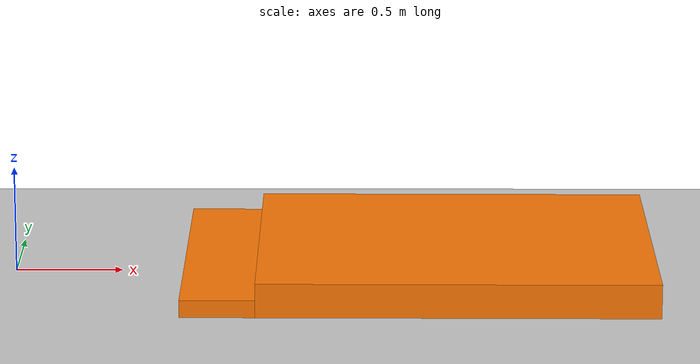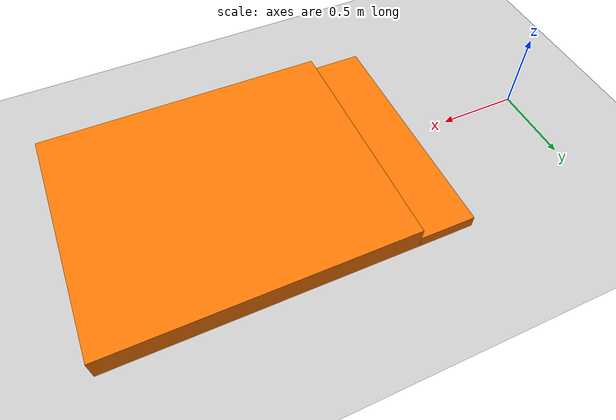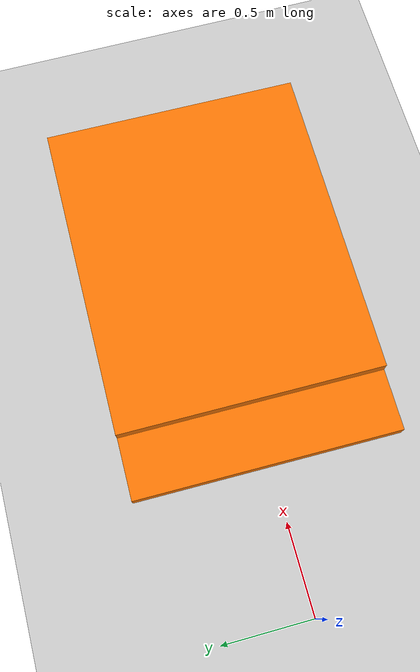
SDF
<?xml version="1.0" ?>
<sdf version="1.4">
  <!-- We use a custom world for the rrbot so that the camera angle is launched correctly -->
  <!-- teset-->
  <world name="default">

  <plugin name="xbot2_clock" filename="libxbot2_gz_clock.so"/>

  <gravity>0 0 -9.81</gravity>

  <model name="ground_plane">
    <static>true</static>
    <link name="link">
      <collision name="collision">
        <geometry>
          <plane>
            <normal>0 0 1</normal>
            <size>100 100</size>
          </plane>
        </geometry>
        <surface>
          <friction>
            <ode>
              <mu>1</mu>
              <mu2>1</mu2>
            </ode>
          </friction>
        </surface>
      </collision>
      <visual name="visual">
        <cast_shadows>false</cast_shadows>
        <geometry>
          <plane>
            <normal>0 0 1</normal>
            <size>100 100</size>
          </plane>
        </geometry>
        <material>
          <script>
            <uri>file://media/materials/scripts/gazebo.material</uri>
            <name>Gazebo/LightGrey</name>
          </script>
        </material>
      </visual>
    </link>
  </model>

    <model name='stair_0.08m_2'>
      <link name='Stairs_4'>
        <self_collide>0</self_collide>
        <enable_wind>0</enable_wind>
        <kinematic>0</kinematic>
        <pose>0 0 0 0 -0 0</pose>
        <gravity>1</gravity>
        <inertial>
          <mass>1</mass>
          <pose>0 0 0 0 -0 0</pose>
          <inertia>
            <ixx>1</ixx>
            <ixy>0</ixy>
            <ixz>0</ixz>
            <iyy>1</iyy>
            <iyz>0</iyz>
            <izz>1</izz>
          </inertia>
        </inertial>
        <visual name='Stairs_4_Visual_1'>
          <pose>0 0.63182 0.08 0 -0 0</pose>
          <geometry>
            <box>
              <size>1.5 1.84545 0.16</size>
            </box>
          </geometry>
          <material>
            <script>
              <uri>file://media/materials/scripts/gazebo.material</uri>
              <name>Gazebo/Grey</name>
            </script>
            <ambient>0.996 0.475 0.02 1</ambient>
            <shader type='pixel'>
              <normal_map>__default__</normal_map>
            </shader>
            <diffuse>0.7 0.7 0.7 1</diffuse>
            <specular>0.01 0.01 0.01 1</specular>
            <emissive>0 0 0 1</emissive>
          </material>
          <meta>
            <layer>0</layer>
          </meta>
          <transparency>0</transparency>
          <cast_shadows>1</cast_shadows>
        </visual>
        <visual name='Stairs_4_Visual_0'>
          <pose>0 1.72727 0.040909 0 -0 0</pose>
          <geometry>
            <box>
              <size>1.5 0.345455 0.081818</size>
            </box>
          </geometry>
          <material>
            <script>
              <uri>file://media/materials/scripts/gazebo.material</uri>
              <name>Gazebo/Grey</name>
            </script>
            <ambient>0.996 0.475 0.02 1</ambient>
            <shader type='pixel'>
              <normal_map>__default__</normal_map>
            </shader>
            <diffuse>0.7 0.7 0.7 1</diffuse>
            <specular>0.01 0.01 0.01 1</specular>
            <emissive>0 0 0 1</emissive>
          </material>
          <meta>
            <layer>0</layer>
          </meta>
          <transparency>0</transparency>
          <cast_shadows>1</cast_shadows>
        </visual>
        <collision name='Stairs_4_Collision_1'>
          <laser_retro>0</laser_retro>
          <max_contacts>10</max_contacts>
          <pose>0 0.63182 0.08 0 -0 0</pose>
          <geometry>
            <box>
              <size>1.5 1.84546 0.16</size>
            </box>
          </geometry>
          <surface>
            <friction>
              <ode>
                <mu>1</mu>
                <mu2>1</mu2>
                <fdir1>0 0 0</fdir1>
                <slip1>0</slip1>
                <slip2>0</slip2>
              </ode>
              <torsional>
                <coefficient>1</coefficient>
                <patch_radius>0</patch_radius>
                <surface_radius>0</surface_radius>
                <use_patch_radius>1</use_patch_radius>
                <ode>
                  <slip>0</slip>
                </ode>
              </torsional>
            </friction>
            <bounce>
              <restitution_coefficient>0</restitution_coefficient>
              <threshold>1e+06</threshold>
            </bounce>
            <contact>
              <collide_without_contact>0</collide_without_contact>
              <collide_without_contact_bitmask>1</collide_without_contact_bitmask>
              <collide_bitmask>1</collide_bitmask>
              <ode>
                <soft_cfm>0</soft_cfm>
                <soft_erp>0.2</soft_erp>
                <kp>1e+13</kp>
                <kd>1</kd>
                <max_vel>0.01</max_vel>
                <min_depth>0</min_depth>
              </ode>
              <bullet>
                <split_impulse>1</split_impulse>
                <split_impulse_penetration_threshold>-0.01</split_impulse_penetration_threshold>
                <soft_cfm>0</soft_cfm>
                <soft_erp>0.2</soft_erp>
                <kp>1e+13</kp>
                <kd>1</kd>
              </bullet>
            </contact>
          </surface>
        </collision>
        <collision name='Stairs_4_Collision_0'>
          <laser_retro>0</laser_retro>
          <max_contacts>10</max_contacts>
          <pose>0 1.72727 0.040909 0 -0 0</pose>
          <geometry>
            <box>
              <size>1.5 0.345455 0.081818</size>
            </box>
          </geometry>
          <surface>
            <friction>
              <ode>
                <mu>1</mu>
                <mu2>1</mu2>
                <fdir1>0 0 0</fdir1>
                <slip1>0</slip1>
                <slip2>0</slip2>
              </ode>
              <torsional>
                <coefficient>1</coefficient>
                <patch_radius>0</patch_radius>
                <surface_radius>0</surface_radius>
                <use_patch_radius>1</use_patch_radius>
                <ode>
                  <slip>0</slip>
                </ode>
              </torsional>
            </friction>
            <bounce>
              <restitution_coefficient>0</restitution_coefficient>
              <threshold>1e+06</threshold>
            </bounce>
            <contact>
              <collide_without_contact>0</collide_without_contact>
              <collide_without_contact_bitmask>1</collide_without_contact_bitmask>
              <collide_bitmask>1</collide_bitmask>
              <ode>
                <soft_cfm>0</soft_cfm>
                <soft_erp>0.2</soft_erp>
                <kp>1e+13</kp>
                <kd>1</kd>
                <max_vel>0.01</max_vel>
                <min_depth>0</min_depth>
              </ode>
              <bullet>
                <split_impulse>1</split_impulse>
                <split_impulse_penetration_threshold>-0.01</split_impulse_penetration_threshold>
                <soft_cfm>0</soft_cfm>
                <soft_erp>0.2</soft_erp>
                <kp>1e+13</kp>
                <kd>1</kd>
              </bullet>
            </contact>
          </surface>
        </collision>
      </link>
      <static>1</static>
      <allow_auto_disable>1</allow_auto_disable>
      <pose>2.70188 -0.006454 0 0 -0 1.56237</pose>
    </model>

    <!-- Global light source -->
    <include>
      <uri>model://sun</uri>
    </include>

    <!-- Focus camera on tall pendulum -->
    <gui fullscreen='0'>
      <camera name='user_camera'>
        <pose>4.927360 -4.376610 3.740080 0.000000 0.275643 2.356190</pose>
        <view_controller>orbit</view_controller>
      </camera>
    </gui>

    <physics name="update_rate" type="ode">
      <real_time_update_rate>4000</real_time_update_rate>
      <max_step_size>0.00025</max_step_size>
      <max_contacts>5</max_contacts>
      <bullet>
	<solver>
          <iters>100</iters>
          <sor>1.55</sor>
        </solver>
        <constraints>
          <contact_surface_layer>0.2</contact_surface_layer>
          <cfm>0.005</cfm>
          <erp>0.2</erp>
        </constraints>
      </bullet>
      <ode>
	<solver>
          <iters>50</iters>
          <sor>1.20</sor>
        </solver>
        <constraints>
          <contact_surface_layer>0.0002</contact_surface_layer>
          <contact_max_correcting_vel>500</contact_max_correcting_vel>
          <cfm>0.000001</cfm>
          <erp>0.3</erp>
        </constraints>
      </ode>
    </physics>

  </world>
</sdf>
